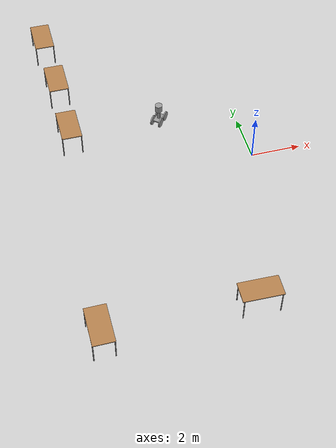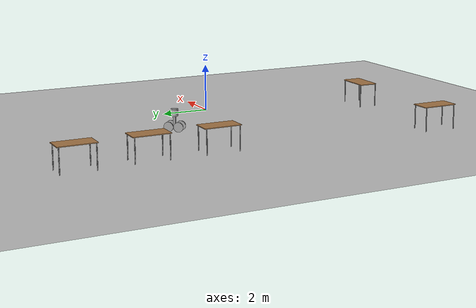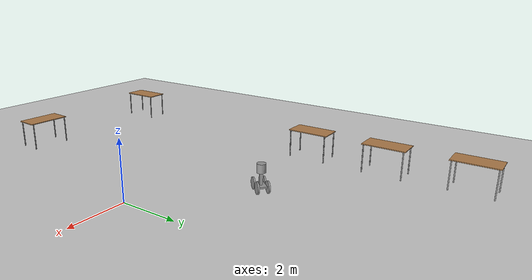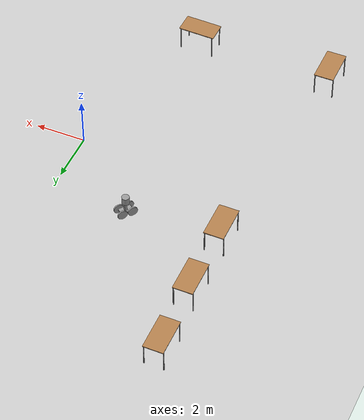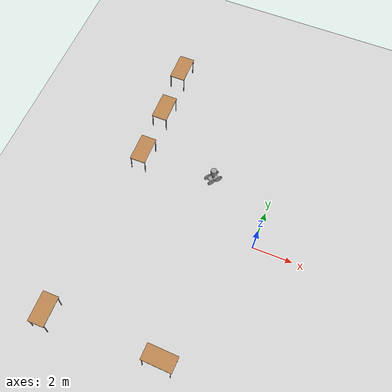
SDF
<sdf version="1.6">
 <world name="default">
  <model name="ground_plane">
   <static>1</static>
   <link name="link">
    <collision name="collision">
     <geometry><plane><normal>0 0 1</normal><size>100 100</size></plane></geometry>
     <surface><friction><ode><mu>100</mu><mu2>50</mu2></ode></friction></surface>
    </collision>
    <visual name="visual">
     <cast_shadows>0</cast_shadows>
     <geometry><plane><normal>0 0 1</normal><size>100 100</size></plane></geometry>
     <material>
      <script><uri>file://media/materials/scripts/gazebo.material</uri><name>Gazebo/Grey</name></script>
     </material>
    </visual>
   </link>
  </model>
  <model name="table">
   <static>1</static>
   <link name="link">
    <collision name="surface">
     <pose>0 0 1 0 -0 0</pose>
     <geometry><box><size>1.5 0.8 0.03</size></box></geometry>
     <surface><friction><ode><mu>0.6</mu><mu2>0.6</mu2></ode></friction></surface>
    </collision>
    <visual name="visual1">
     <pose>0 0 1 0 -0 0</pose>
     <geometry><box><size>1.5 0.8 0.03</size></box></geometry>
     <material>
      <script><uri>file://media/materials/scripts/gazebo.material</uri><name>Gazebo/Wood</name></script>
     </material>
    </visual>
    <collision name="front_left_leg">
     <pose>0.68 0.38 0.5 0 -0 0</pose>
     <geometry><cylinder><radius>0.02</radius><length>1</length></cylinder></geometry>
    </collision>
    <visual name="front_left_leg">
     <pose>0.68 0.38 0.5 0 -0 0</pose>
     <geometry><cylinder><radius>0.02</radius><length>1</length></cylinder></geometry>
     <material>
      <script><uri>file://media/materials/scripts/gazebo.material</uri><name>Gazebo/Grey</name></script>
     </material>
    </visual>
    <collision name="front_right_leg">
     <pose>0.68 -0.38 0.5 0 -0 0</pose>
     <geometry><cylinder><radius>0.02</radius><length>1</length></cylinder></geometry>
    </collision>
    <visual name="front_right_leg">
     <pose>0.68 -0.38 0.5 0 -0 0</pose>
     <geometry><cylinder><radius>0.02</radius><length>1</length></cylinder></geometry>
     <material>
      <script><uri>file://media/materials/scripts/gazebo.material</uri><name>Gazebo/Grey</name></script>
     </material>
    </visual>
    <collision name="back_right_leg">
     <pose>-0.68 -0.38 0.5 0 -0 0</pose>
     <geometry><cylinder><radius>0.02</radius><length>1</length></cylinder></geometry>
    </collision>
    <visual name="back_right_leg">
     <pose>-0.68 -0.38 0.5 0 -0 0</pose>
     <geometry><cylinder><radius>0.02</radius><length>1</length></cylinder></geometry>
     <material>
      <script><uri>file://media/materials/scripts/gazebo.material</uri><name>Gazebo/Grey</name></script>
     </material>
    </visual>
    <collision name="back_left_leg">
     <pose>-0.68 0.38 0.5 0 -0 0</pose>
     <geometry><cylinder><radius>0.02</radius><length>1</length></cylinder></geometry>
    </collision>
    <visual name="back_left_leg">
     <pose>-0.68 0.38 0.5 0 -0 0</pose>
     <geometry><cylinder><radius>0.02</radius><length>1</length></cylinder></geometry>
     <material>
      <script><uri>file://media/materials/scripts/gazebo.material</uri><name>Gazebo/Grey</name></script>
     </material>
    </visual>
   </link>
   <pose>-2.00691 -6.77014 0 0 0 -0.026226</pose>
  </model>
  <model name="table_clone_0">
   <static>1</static>
   <link name="link">
    <collision name="surface">
     <pose>0 0 1 0 -0 0</pose>
     <geometry><box><size>1.5 0.8 0.03</size></box></geometry>
     <surface><friction><ode><mu>0.6</mu><mu2>0.6</mu2></ode></friction></surface>
    </collision>
    <visual name="visual1">
     <pose>0 0 1 0 -0 0</pose>
     <geometry><box><size>1.5 0.8 0.03</size></box></geometry>
     <material>
      <script><uri>file://media/materials/scripts/gazebo.material</uri><name>Gazebo/Wood</name></script>
     </material>
    </visual>
    <collision name="front_left_leg">
     <pose>0.68 0.38 0.5 0 -0 0</pose>
     <geometry><cylinder><radius>0.02</radius><length>1</length></cylinder></geometry>
    </collision>
    <visual name="front_left_leg">
     <pose>0.68 0.38 0.5 0 -0 0</pose>
     <geometry><cylinder><radius>0.02</radius><length>1</length></cylinder></geometry>
     <material>
      <script><uri>file://media/materials/scripts/gazebo.material</uri><name>Gazebo/Grey</name></script>
     </material>
    </visual>
    <collision name="front_right_leg">
     <pose>0.68 -0.38 0.5 0 -0 0</pose>
     <geometry><cylinder><radius>0.02</radius><length>1</length></cylinder></geometry>
    </collision>
    <visual name="front_right_leg">
     <pose>0.68 -0.38 0.5 0 -0 0</pose>
     <geometry><cylinder><radius>0.02</radius><length>1</length></cylinder></geometry>
     <material>
      <script><uri>file://media/materials/scripts/gazebo.material</uri><name>Gazebo/Grey</name></script>
     </material>
    </visual>
    <collision name="back_right_leg">
     <pose>-0.68 -0.38 0.5 0 -0 0</pose>
     <geometry><cylinder><radius>0.02</radius><length>1</length></cylinder></geometry>
    </collision>
    <visual name="back_right_leg">
     <pose>-0.68 -0.38 0.5 0 -0 0</pose>
     <geometry><cylinder><radius>0.02</radius><length>1</length></cylinder></geometry>
     <material>
      <script><uri>file://media/materials/scripts/gazebo.material</uri><name>Gazebo/Grey</name></script>
     </material>
    </visual>
    <collision name="back_left_leg">
     <pose>-0.68 0.38 0.5 0 -0 0</pose>
     <geometry><cylinder><radius>0.02</radius><length>1</length></cylinder></geometry>
    </collision>
    <visual name="back_left_leg">
     <pose>-0.68 0.38 0.5 0 -0 0</pose>
     <geometry><cylinder><radius>0.02</radius><length>1</length></cylinder></geometry>
     <material>
      <script><uri>file://media/materials/scripts/gazebo.material</uri><name>Gazebo/Grey</name></script>
     </material>
    </visual>
   </link>
   <pose>-7.6186 -6.77238 0 0 0 -1.56936</pose>
  </model>
  <model name="table_clone_1">
   <static>1</static>
   <link name="link">
    <collision name="surface">
     <pose>0 0 1 0 -0 0</pose>
     <geometry><box><size>1.5 0.8 0.03</size></box></geometry>
     <surface><friction><ode><mu>0.6</mu><mu2>0.6</mu2></ode></friction></surface>
    </collision>
    <visual name="visual1">
     <pose>0 0 1 0 -0 0</pose>
     <geometry><box><size>1.5 0.8 0.03</size></box></geometry>
     <material>
      <script><uri>file://media/materials/scripts/gazebo.material</uri><name>Gazebo/Wood</name></script>
     </material>
    </visual>
    <collision name="front_left_leg">
     <pose>0.68 0.38 0.5 0 -0 0</pose>
     <geometry><cylinder><radius>0.02</radius><length>1</length></cylinder></geometry>
    </collision>
    <visual name="front_left_leg">
     <pose>0.68 0.38 0.5 0 -0 0</pose>
     <geometry><cylinder><radius>0.02</radius><length>1</length></cylinder></geometry>
     <material>
      <script><uri>file://media/materials/scripts/gazebo.material</uri><name>Gazebo/Grey</name></script>
     </material>
    </visual>
    <collision name="front_right_leg">
     <pose>0.68 -0.38 0.5 0 -0 0</pose>
     <geometry><cylinder><radius>0.02</radius><length>1</length></cylinder></geometry>
    </collision>
    <visual name="front_right_leg">
     <pose>0.68 -0.38 0.5 0 -0 0</pose>
     <geometry><cylinder><radius>0.02</radius><length>1</length></cylinder></geometry>
     <material>
      <script><uri>file://media/materials/scripts/gazebo.material</uri><name>Gazebo/Grey</name></script>
     </material>
    </visual>
    <collision name="back_right_leg">
     <pose>-0.68 -0.38 0.5 0 -0 0</pose>
     <geometry><cylinder><radius>0.02</radius><length>1</length></cylinder></geometry>
    </collision>
    <visual name="back_right_leg">
     <pose>-0.68 -0.38 0.5 0 -0 0</pose>
     <geometry><cylinder><radius>0.02</radius><length>1</length></cylinder></geometry>
     <material>
      <script><uri>file://media/materials/scripts/gazebo.material</uri><name>Gazebo/Grey</name></script>
     </material>
    </visual>
    <collision name="back_left_leg">
     <pose>-0.68 0.38 0.5 0 -0 0</pose>
     <geometry><cylinder><radius>0.02</radius><length>1</length></cylinder></geometry>
    </collision>
    <visual name="back_left_leg">
     <pose>-0.68 0.38 0.5 0 -0 0</pose>
     <geometry><cylinder><radius>0.02</radius><length>1</length></cylinder></geometry>
     <material>
      <script><uri>file://media/materials/scripts/gazebo.material</uri><name>Gazebo/Grey</name></script>
     </material>
    </visual>
   </link>
   <pose>-7.01291 8.17807 0 0 0 -1.56936</pose>
  </model>
  <model name="table_clone_2">
   <static>1</static>
   <link name="link">
    <collision name="surface">
     <pose>0 0 1 0 -0 0</pose>
     <geometry><box><size>1.5 0.8 0.03</size></box></geometry>
     <surface><friction><ode><mu>0.6</mu><mu2>0.6</mu2></ode></friction></surface>
    </collision>
    <visual name="visual1">
     <pose>0 0 1 0 -0 0</pose>
     <geometry><box><size>1.5 0.8 0.03</size></box></geometry>
     <material>
      <script><uri>file://media/materials/scripts/gazebo.material</uri><name>Gazebo/Wood</name></script>
     </material>
    </visual>
    <collision name="front_left_leg">
     <pose>0.68 0.38 0.5 0 -0 0</pose>
     <geometry><cylinder><radius>0.02</radius><length>1</length></cylinder></geometry>
    </collision>
    <visual name="front_left_leg">
     <pose>0.68 0.38 0.5 0 -0 0</pose>
     <geometry><cylinder><radius>0.02</radius><length>1</length></cylinder></geometry>
     <material>
      <script><uri>file://media/materials/scripts/gazebo.material</uri><name>Gazebo/Grey</name></script>
     </material>
    </visual>
    <collision name="front_right_leg">
     <pose>0.68 -0.38 0.5 0 -0 0</pose>
     <geometry><cylinder><radius>0.02</radius><length>1</length></cylinder></geometry>
    </collision>
    <visual name="front_right_leg">
     <pose>0.68 -0.38 0.5 0 -0 0</pose>
     <geometry><cylinder><radius>0.02</radius><length>1</length></cylinder></geometry>
     <material>
      <script><uri>file://media/materials/scripts/gazebo.material</uri><name>Gazebo/Grey</name></script>
     </material>
    </visual>
    <collision name="back_right_leg">
     <pose>-0.68 -0.38 0.5 0 -0 0</pose>
     <geometry><cylinder><radius>0.02</radius><length>1</length></cylinder></geometry>
    </collision>
    <visual name="back_right_leg">
     <pose>-0.68 -0.38 0.5 0 -0 0</pose>
     <geometry><cylinder><radius>0.02</radius><length>1</length></cylinder></geometry>
     <material>
      <script><uri>file://media/materials/scripts/gazebo.material</uri><name>Gazebo/Grey</name></script>
     </material>
    </visual>
    <collision name="back_left_leg">
     <pose>-0.68 0.38 0.5 0 -0 0</pose>
     <geometry><cylinder><radius>0.02</radius><length>1</length></cylinder></geometry>
    </collision>
    <visual name="back_left_leg">
     <pose>-0.68 0.38 0.5 0 -0 0</pose>
     <geometry><cylinder><radius>0.02</radius><length>1</length></cylinder></geometry>
     <material>
      <script><uri>file://media/materials/scripts/gazebo.material</uri><name>Gazebo/Grey</name></script>
     </material>
    </visual>
   </link>
   <pose>-6.89144 5.3803 0 0 0 -1.56936</pose>
  </model>
  <model name="table_clone_3">
   <static>1</static>
   <link name="link">
    <collision name="surface">
     <pose>0 0 1 0 -0 0</pose>
     <geometry><box><size>1.5 0.8 0.03</size></box></geometry>
     <surface><friction><ode><mu>0.6</mu><mu2>0.6</mu2></ode></friction></surface>
    </collision>
    <visual name="visual1">
     <pose>0 0 1 0 -0 0</pose>
     <geometry><box><size>1.5 0.8 0.03</size></box></geometry>
     <material>
      <script><uri>file://media/materials/scripts/gazebo.material</uri><name>Gazebo/Wood</name></script>
     </material>
    </visual>
    <collision name="front_left_leg">
     <pose>0.68 0.38 0.5 0 -0 0</pose>
     <geometry><cylinder><radius>0.02</radius><length>1</length></cylinder></geometry>
    </collision>
    <visual name="front_left_leg">
     <pose>0.68 0.38 0.5 0 -0 0</pose>
     <geometry><cylinder><radius>0.02</radius><length>1</length></cylinder></geometry>
     <material>
      <script><uri>file://media/materials/scripts/gazebo.material</uri><name>Gazebo/Grey</name></script>
     </material>
    </visual>
    <collision name="front_right_leg">
     <pose>0.68 -0.38 0.5 0 -0 0</pose>
     <geometry><cylinder><radius>0.02</radius><length>1</length></cylinder></geometry>
    </collision>
    <visual name="front_right_leg">
     <pose>0.68 -0.38 0.5 0 -0 0</pose>
     <geometry><cylinder><radius>0.02</radius><length>1</length></cylinder></geometry>
     <material>
      <script><uri>file://media/materials/scripts/gazebo.material</uri><name>Gazebo/Grey</name></script>
     </material>
    </visual>
    <collision name="back_right_leg">
     <pose>-0.68 -0.38 0.5 0 -0 0</pose>
     <geometry><cylinder><radius>0.02</radius><length>1</length></cylinder></geometry>
    </collision>
    <visual name="back_right_leg">
     <pose>-0.68 -0.38 0.5 0 -0 0</pose>
     <geometry><cylinder><radius>0.02</radius><length>1</length></cylinder></geometry>
     <material>
      <script><uri>file://media/materials/scripts/gazebo.material</uri><name>Gazebo/Grey</name></script>
     </material>
    </visual>
    <collision name="back_left_leg">
     <pose>-0.68 0.38 0.5 0 -0 0</pose>
     <geometry><cylinder><radius>0.02</radius><length>1</length></cylinder></geometry>
    </collision>
    <visual name="back_left_leg">
     <pose>-0.68 0.38 0.5 0 -0 0</pose>
     <geometry><cylinder><radius>0.02</radius><length>1</length></cylinder></geometry>
     <material>
      <script><uri>file://media/materials/scripts/gazebo.material</uri><name>Gazebo/Grey</name></script>
     </material>
    </visual>
   </link>
   <pose>-6.88542 2.57625 0 0 0 -1.56936</pose>
  </model>
  <model name="model4">
   <link name="link_0">
    <pose>0.000599 0.000833 0.1625 0 -0 0</pose>
    <inertial>
     <mass>1</mass>
     <inertia>
      <ixx>0.166667</ixx>
      <ixy>0</ixy>
      <ixz>0</ixz>
      <iyy>0.166667</iyy>
      <iyz>0</iyz>
      <izz>0.166667</izz>
     </inertia>
    </inertial>
    <visual name="visual">
     <geometry><box><size>0.5 0.3 0.05</size></box></geometry>
     <material>
      <lighting>1</lighting>
      <script><uri>file://media/materials/scripts/gazebo.material</uri><name>Gazebo/Grey</name></script>
      <shader type="pixel"><normal_map>__default__</normal_map></shader>
      <ambient>0.3 0.3 0.3 1</ambient>
      <diffuse>0.7 0.7 0.7 1</diffuse>
      <specular>0.01 0.01 0.01 1</specular>
      <emissive>0 0 0 1</emissive>
     </material>
    </visual>
    <collision name="collision">
     <geometry><box><size>0.5 0.3 0.05</size></box></geometry>
     <surface>
      <friction>
       <ode><mu>1</mu><mu2>1</mu2><fdir1>0 0 0</fdir1><slip1>0</slip1><slip2>0</slip2></ode>
       <torsional>
        <coefficient>1</coefficient>
        <patch_radius>0</patch_radius>
        <surface_radius>0</surface_radius>
        <use_patch_radius>1</use_patch_radius>
        <ode><slip>0</slip></ode>
       </torsional>
      </friction>
      <bounce><restitution_coefficient>0</restitution_coefficient><threshold>1e+06</threshold></bounce>
      <contact>
       <collide_without_contact>0</collide_without_contact>
       <collide_without_contact_bitmask>1</collide_without_contact_bitmask>
       <collide_bitmask>1</collide_bitmask>
       <ode>
        <soft_cfm>0</soft_cfm>
        <soft_erp>0.2</soft_erp>
        <kp>1e+13</kp>
        <kd>1</kd>
        <max_vel>0.01</max_vel>
        <min_depth>0</min_depth>
       </ode>
       <bullet>
        <split_impulse>1</split_impulse>
        <split_impulse_penetration_threshold>-0.01</split_impulse_penetration_threshold>
        <soft_cfm>0</soft_cfm>
        <soft_erp>0.2</soft_erp>
        <kp>1e+13</kp>
        <kd>1</kd>
       </bullet>
      </contact>
     </surface>
    </collision>
   </link>
   <link name="link_1">
    <pose>-0.209401 0.175852 0.1625 1.5707 -0 0</pose>
    <inertial>
     <mass>1</mass>
     <inertia><ixx>0.145833</ixx><ixy>0</ixy><ixz>0</ixz><iyy>0.145833</iyy><iyz>0</iyz><izz>0.125</izz></inertia>
    </inertial>
    <visual name="visual">
     <geometry><cylinder><radius>0.2</radius><length>0.05</length></cylinder></geometry>
     <material>
      <lighting>1</lighting>
      <script><uri>file://media/materials/scripts/gazebo.material</uri><name>Gazebo/Grey</name></script>
      <shader type="pixel"><normal_map>__default__</normal_map></shader>
      <ambient>0.3 0.3 0.3 1</ambient>
      <diffuse>0.7 0.7 0.7 1</diffuse>
      <specular>0.01 0.01 0.01 1</specular>
      <emissive>0 0 0 1</emissive>
     </material>
    </visual>
    <collision name="collision">
     <geometry><cylinder><radius>0.2</radius><length>0.05</length></cylinder></geometry>
     <surface>
      <friction>
       <ode><mu>1</mu><mu2>1</mu2><fdir1>0 0 0</fdir1><slip1>0</slip1><slip2>0</slip2></ode>
       <torsional>
        <coefficient>1</coefficient>
        <patch_radius>0</patch_radius>
        <surface_radius>0</surface_radius>
        <use_patch_radius>1</use_patch_radius>
        <ode><slip>0</slip></ode>
       </torsional>
      </friction>
      <bounce><restitution_coefficient>0</restitution_coefficient><threshold>1e+06</threshold></bounce>
      <contact>
       <collide_without_contact>0</collide_without_contact>
       <collide_without_contact_bitmask>1</collide_without_contact_bitmask>
       <collide_bitmask>1</collide_bitmask>
       <ode>
        <soft_cfm>0</soft_cfm>
        <soft_erp>0.2</soft_erp>
        <kp>1e+13</kp>
        <kd>1</kd>
        <max_vel>0.01</max_vel>
        <min_depth>0</min_depth>
       </ode>
       <bullet>
        <split_impulse>1</split_impulse>
        <split_impulse_penetration_threshold>-0.01</split_impulse_penetration_threshold>
        <soft_cfm>0</soft_cfm>
        <soft_erp>0.2</soft_erp>
        <kp>1e+13</kp>
        <kd>1</kd>
       </bullet>
      </contact>
     </surface>
    </collision>
   </link>
   <link name="link_1_clone">
    <pose>0.210599 0.175852 0.1625 1.5707 -0 0</pose>
    <inertial>
     <mass>1</mass>
     <inertia><ixx>0.145833</ixx><ixy>0</ixy><ixz>0</ixz><iyy>0.145833</iyy><iyz>0</iyz><izz>0.125</izz></inertia>
    </inertial>
    <visual name="visual">
     <geometry><cylinder><radius>0.2</radius><length>0.05</length></cylinder></geometry>
     <material>
      <lighting>1</lighting>
      <script><uri>file://media/materials/scripts/gazebo.material</uri><name>Gazebo/Grey</name></script>
      <shader type="pixel"><normal_map>__default__</normal_map></shader>
      <ambient>0.3 0.3 0.3 1</ambient>
      <diffuse>0.7 0.7 0.7 1</diffuse>
      <specular>0.01 0.01 0.01 1</specular>
      <emissive>0 0 0 1</emissive>
     </material>
    </visual>
    <collision name="collision">
     <geometry><cylinder><radius>0.2</radius><length>0.05</length></cylinder></geometry>
     <surface>
      <friction>
       <ode><mu>1</mu><mu2>1</mu2><fdir1>0 0 0</fdir1><slip1>0</slip1><slip2>0</slip2></ode>
       <torsional>
        <coefficient>1</coefficient>
        <patch_radius>0</patch_radius>
        <surface_radius>0</surface_radius>
        <use_patch_radius>1</use_patch_radius>
        <ode><slip>0</slip></ode>
       </torsional>
      </friction>
      <bounce><restitution_coefficient>0</restitution_coefficient><threshold>1e+06</threshold></bounce>
      <contact>
       <collide_without_contact>0</collide_without_contact>
       <collide_without_contact_bitmask>1</collide_without_contact_bitmask>
       <collide_bitmask>1</collide_bitmask>
       <ode>
        <soft_cfm>0</soft_cfm>
        <soft_erp>0.2</soft_erp>
        <kp>1e+13</kp>
        <kd>1</kd>
        <max_vel>0.01</max_vel>
        <min_depth>0</min_depth>
       </ode>
       <bullet>
        <split_impulse>1</split_impulse>
        <split_impulse_penetration_threshold>-0.01</split_impulse_penetration_threshold>
        <soft_cfm>0</soft_cfm>
        <soft_erp>0.2</soft_erp>
        <kp>1e+13</kp>
        <kd>1</kd>
       </bullet>
      </contact>
     </surface>
    </collision>
   </link>
   <link name="link_1_clone_0">
    <pose>0.2106 -0.174186 0.1625 1.5707 -0 0</pose>
    <inertial>
     <mass>1</mass>
     <inertia><ixx>0.145833</ixx><ixy>0</ixy><ixz>0</ixz><iyy>0.145833</iyy><iyz>0</iyz><izz>0.125</izz></inertia>
    </inertial>
    <visual name="visual">
     <geometry><cylinder><radius>0.2</radius><length>0.05</length></cylinder></geometry>
     <material>
      <lighting>1</lighting>
      <script><uri>file://media/materials/scripts/gazebo.material</uri><name>Gazebo/Grey</name></script>
      <shader type="pixel"><normal_map>__default__</normal_map></shader>
      <ambient>0.3 0.3 0.3 1</ambient>
      <diffuse>0.7 0.7 0.7 1</diffuse>
      <specular>0.01 0.01 0.01 1</specular>
      <emissive>0 0 0 1</emissive>
     </material>
    </visual>
    <collision name="collision">
     <geometry><cylinder><radius>0.2</radius><length>0.05</length></cylinder></geometry>
     <surface>
      <friction>
       <ode><mu>1</mu><mu2>1</mu2><fdir1>0 0 0</fdir1><slip1>0</slip1><slip2>0</slip2></ode>
       <torsional>
        <coefficient>1</coefficient>
        <patch_radius>0</patch_radius>
        <surface_radius>0</surface_radius>
        <use_patch_radius>1</use_patch_radius>
        <ode><slip>0</slip></ode>
       </torsional>
      </friction>
      <bounce><restitution_coefficient>0</restitution_coefficient><threshold>1e+06</threshold></bounce>
      <contact>
       <collide_without_contact>0</collide_without_contact>
       <collide_without_contact_bitmask>1</collide_without_contact_bitmask>
       <collide_bitmask>1</collide_bitmask>
       <ode>
        <soft_cfm>0</soft_cfm>
        <soft_erp>0.2</soft_erp>
        <kp>1e+13</kp>
        <kd>1</kd>
        <max_vel>0.01</max_vel>
        <min_depth>0</min_depth>
       </ode>
       <bullet>
        <split_impulse>1</split_impulse>
        <split_impulse_penetration_threshold>-0.01</split_impulse_penetration_threshold>
        <soft_cfm>0</soft_cfm>
        <soft_erp>0.2</soft_erp>
        <kp>1e+13</kp>
        <kd>1</kd>
       </bullet>
      </contact>
     </surface>
    </collision>
   </link>
   <link name="link_1_clone_1">
    <pose>-0.2094 -0.174186 0.1625 1.5707 -0 0</pose>
    <inertial>
     <mass>1</mass>
     <inertia><ixx>0.145833</ixx><ixy>0</ixy><ixz>0</ixz><iyy>0.145833</iyy><iyz>0</iyz><izz>0.125</izz></inertia>
    </inertial>
    <visual name="visual">
     <geometry><cylinder><radius>0.2</radius><length>0.05</length></cylinder></geometry>
     <material>
      <lighting>1</lighting>
      <script><uri>file://media/materials/scripts/gazebo.material</uri><name>Gazebo/Grey</name></script>
      <shader type="pixel"><normal_map>__default__</normal_map></shader>
      <ambient>0.3 0.3 0.3 1</ambient>
      <diffuse>0.7 0.7 0.7 1</diffuse>
      <specular>0.01 0.01 0.01 1</specular>
      <emissive>0 0 0 1</emissive>
     </material>
    </visual>
    <collision name="collision">
     <geometry><cylinder><radius>0.2</radius><length>0.05</length></cylinder></geometry>
     <surface>
      <friction>
       <ode><mu>1</mu><mu2>1</mu2><fdir1>0 0 0</fdir1><slip1>0</slip1><slip2>0</slip2></ode>
       <torsional>
        <coefficient>1</coefficient>
        <patch_radius>0</patch_radius>
        <surface_radius>0</surface_radius>
        <use_patch_radius>1</use_patch_radius>
        <ode><slip>0</slip></ode>
       </torsional>
      </friction>
      <bounce><restitution_coefficient>0</restitution_coefficient><threshold>1e+06</threshold></bounce>
      <contact>
       <collide_without_contact>0</collide_without_contact>
       <collide_without_contact_bitmask>1</collide_without_contact_bitmask>
       <collide_bitmask>1</collide_bitmask>
       <ode>
        <soft_cfm>0</soft_cfm>
        <soft_erp>0.2</soft_erp>
        <kp>1e+13</kp>
        <kd>1</kd>
        <max_vel>0.01</max_vel>
        <min_depth>0</min_depth>
       </ode>
       <bullet>
        <split_impulse>1</split_impulse>
        <split_impulse_penetration_threshold>-0.01</split_impulse_penetration_threshold>
        <soft_cfm>0</soft_cfm>
        <soft_erp>0.2</soft_erp>
        <kp>1e+13</kp>
        <kd>1</kd>
       </bullet>
      </contact>
     </surface>
    </collision>
   </link>
   <link name="link_2">
    <pose>-0.002997 -0.004167 0.3875 0 -0 0</pose>
    <inertial>
     <mass>1</mass>
     <inertia>
      <ixx>0.166667</ixx>
      <ixy>0</ixy>
      <ixz>0</ixz>
      <iyy>0.166667</iyy>
      <iyz>0</iyz>
      <izz>0.166667</izz>
     </inertia>
    </inertial>
    <visual name="visual">
     <geometry><box><size>0.1 0.1 0.4</size></box></geometry>
     <material>
      <lighting>1</lighting>
      <script><uri>file://media/materials/scripts/gazebo.material</uri><name>Gazebo/Grey</name></script>
      <shader type="pixel"><normal_map>__default__</normal_map></shader>
      <ambient>0.3 0.3 0.3 1</ambient>
      <diffuse>0.7 0.7 0.7 1</diffuse>
      <specular>0.01 0.01 0.01 1</specular>
      <emissive>0 0 0 1</emissive>
     </material>
    </visual>
    <collision name="collision">
     <geometry><box><size>0.1 0.1 0.4</size></box></geometry>
     <surface>
      <friction>
       <ode><mu>1</mu><mu2>1</mu2><fdir1>0 0 0</fdir1><slip1>0</slip1><slip2>0</slip2></ode>
       <torsional>
        <coefficient>1</coefficient>
        <patch_radius>0</patch_radius>
        <surface_radius>0</surface_radius>
        <use_patch_radius>1</use_patch_radius>
        <ode><slip>0</slip></ode>
       </torsional>
      </friction>
      <bounce><restitution_coefficient>0</restitution_coefficient><threshold>1e+06</threshold></bounce>
      <contact>
       <collide_without_contact>0</collide_without_contact>
       <collide_without_contact_bitmask>1</collide_without_contact_bitmask>
       <collide_bitmask>1</collide_bitmask>
       <ode>
        <soft_cfm>0</soft_cfm>
        <soft_erp>0.2</soft_erp>
        <kp>1e+13</kp>
        <kd>1</kd>
        <max_vel>0.01</max_vel>
        <min_depth>0</min_depth>
       </ode>
       <bullet>
        <split_impulse>1</split_impulse>
        <split_impulse_penetration_threshold>-0.01</split_impulse_penetration_threshold>
        <soft_cfm>0</soft_cfm>
        <soft_erp>0.2</soft_erp>
        <kp>1e+13</kp>
        <kd>1</kd>
       </bullet>
      </contact>
     </surface>
    </collision>
   </link>
   <link name="link_3">
    <pose>0.002003 -0.014167 0.7375 0 -0 0</pose>
    <inertial>
     <mass>1</mass>
     <inertia><ixx>0.145833</ixx><ixy>0</ixy><ixz>0</ixz><iyy>0.145833</iyy><iyz>0</iyz><izz>0.125</izz></inertia>
    </inertial>
    <visual name="visual">
     <geometry><cylinder><radius>0.15</radius><length>0.3</length></cylinder></geometry>
     <material>
      <lighting>1</lighting>
      <script><uri>file://media/materials/scripts/gazebo.material</uri><name>Gazebo/Grey</name></script>
      <shader type="pixel"><normal_map>__default__</normal_map></shader>
      <ambient>0.3 0.3 0.3 1</ambient>
      <diffuse>0.7 0.7 0.7 1</diffuse>
      <specular>0.01 0.01 0.01 1</specular>
      <emissive>0 0 0 1</emissive>
     </material>
    </visual>
    <collision name="collision">
     <geometry><cylinder><radius>0.15</radius><length>0.3</length></cylinder></geometry>
     <surface>
      <friction>
       <ode><mu>1</mu><mu2>1</mu2><fdir1>0 0 0</fdir1><slip1>0</slip1><slip2>0</slip2></ode>
       <torsional>
        <coefficient>1</coefficient>
        <patch_radius>0</patch_radius>
        <surface_radius>0</surface_radius>
        <use_patch_radius>1</use_patch_radius>
        <ode><slip>0</slip></ode>
       </torsional>
      </friction>
      <bounce><restitution_coefficient>0</restitution_coefficient><threshold>1e+06</threshold></bounce>
      <contact>
       <collide_without_contact>0</collide_without_contact>
       <collide_without_contact_bitmask>1</collide_without_contact_bitmask>
       <collide_bitmask>1</collide_bitmask>
       <ode>
        <soft_cfm>0</soft_cfm>
        <soft_erp>0.2</soft_erp>
        <kp>1e+13</kp>
        <kd>1</kd>
        <max_vel>0.01</max_vel>
        <min_depth>0</min_depth>
       </ode>
       <bullet>
        <split_impulse>1</split_impulse>
        <split_impulse_penetration_threshold>-0.01</split_impulse_penetration_threshold>
        <soft_cfm>0</soft_cfm>
        <soft_erp>0.2</soft_erp>
        <kp>1e+13</kp>
        <kd>1</kd>
       </bullet>
      </contact>
     </surface>
    </collision>
   </link>
   <joint name="link_0_JOINT_0" type="revolute">
    <parent>link_0</parent>
    <child>link_1_clone</child>
    <axis>
     <xyz>0 0 1</xyz>
     <use_parent_model_frame>0</use_parent_model_frame>
     <limit>
      <lower>-1.79769e+308</lower>
      <upper>1.79769e+308</upper>
      <effort>-1</effort>
      <velocity>-1</velocity>
     </limit>
     <dynamics>
      <spring_reference>0</spring_reference>
      <spring_stiffness>0</spring_stiffness>
      <damping>0</damping>
     </dynamics>
    </axis>
    <physics>
     <ode><limit><cfm>0</cfm><erp>0.2</erp></limit><suspension><cfm>0</cfm><erp>0.2</erp></suspension></ode>
    </physics>
   </joint>
   <joint name="link_0_JOINT_1" type="revolute">
    <parent>link_0</parent>
    <child>link_1</child>
    <axis>
     <xyz>0 0 1</xyz>
     <use_parent_model_frame>0</use_parent_model_frame>
     <limit>
      <lower>-1.79769e+308</lower>
      <upper>1.79769e+308</upper>
      <effort>-1</effort>
      <velocity>-1</velocity>
     </limit>
     <dynamics>
      <spring_reference>0</spring_reference>
      <spring_stiffness>0</spring_stiffness>
      <damping>0</damping>
     </dynamics>
    </axis>
    <physics>
     <ode><limit><cfm>0</cfm><erp>0.2</erp></limit><suspension><cfm>0</cfm><erp>0.2</erp></suspension></ode>
    </physics>
   </joint>
   <joint name="link_0_JOINT_2" type="revolute">
    <parent>link_0</parent>
    <child>link_1_clone_1</child>
    <axis>
     <xyz>0 0 1</xyz>
     <use_parent_model_frame>0</use_parent_model_frame>
     <limit>
      <lower>-1.79769e+308</lower>
      <upper>1.79769e+308</upper>
      <effort>-1</effort>
      <velocity>-1</velocity>
     </limit>
     <dynamics>
      <spring_reference>0</spring_reference>
      <spring_stiffness>0</spring_stiffness>
      <damping>0</damping>
     </dynamics>
    </axis>
    <physics>
     <ode><limit><cfm>0</cfm><erp>0.2</erp></limit><suspension><cfm>0</cfm><erp>0.2</erp></suspension></ode>
    </physics>
   </joint>
   <joint name="link_0_JOINT_3" type="revolute">
    <parent>link_0</parent>
    <child>link_1_clone_0</child>
    <axis>
     <xyz>0 0 1</xyz>
     <use_parent_model_frame>0</use_parent_model_frame>
     <limit>
      <lower>-1.79769e+308</lower>
      <upper>1.79769e+308</upper>
      <effort>-1</effort>
      <velocity>-1</velocity>
     </limit>
     <dynamics>
      <spring_reference>0</spring_reference>
      <spring_stiffness>0</spring_stiffness>
      <damping>0</damping>
     </dynamics>
    </axis>
    <physics>
     <ode><limit><cfm>0</cfm><erp>0.2</erp></limit><suspension><cfm>0</cfm><erp>0.2</erp></suspension></ode>
    </physics>
   </joint>
   <joint name="link_0_JOINT_4" type="fixed">
    <parent>link_0</parent>
    <child>link_2</child>
    <physics>
     <ode><limit><cfm>0</cfm><erp>0.2</erp></limit><suspension><cfm>0</cfm><erp>0.2</erp></suspension></ode>
    </physics>
   </joint>
   <joint name="link_2_JOINT_5" type="fixed">
    <parent>link_2</parent>
    <child>link_3</child>
    <physics>
     <ode><limit><cfm>0</cfm><erp>0.2</erp></limit><suspension><cfm>0</cfm><erp>0.2</erp></suspension></ode>
    </physics>
   </joint>
   <static>0</static>
   <pose>-3.1135 2.80095 0.0375 -2e-06 -1.4e-05 -2.27011</pose>
  </model>
 </world>
</sdf>
